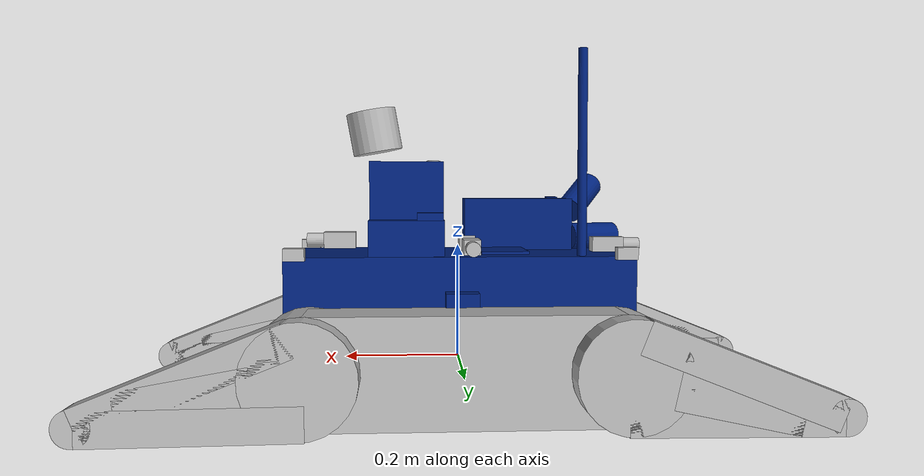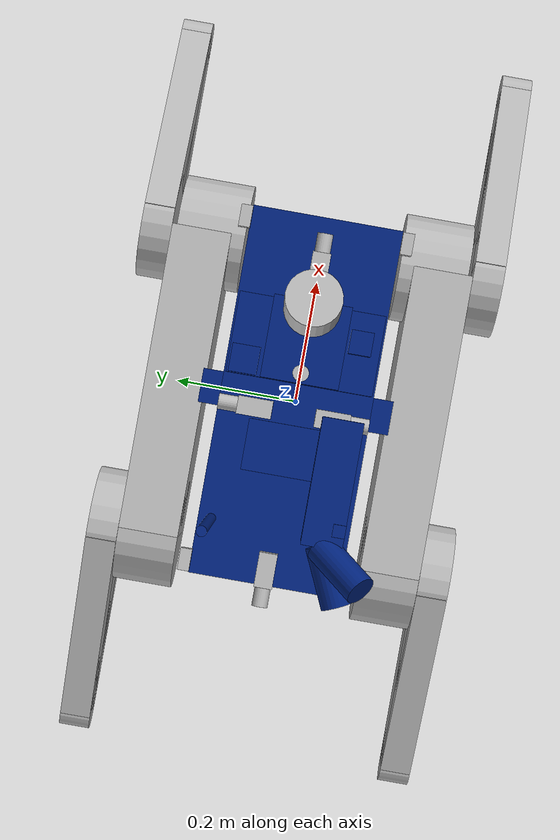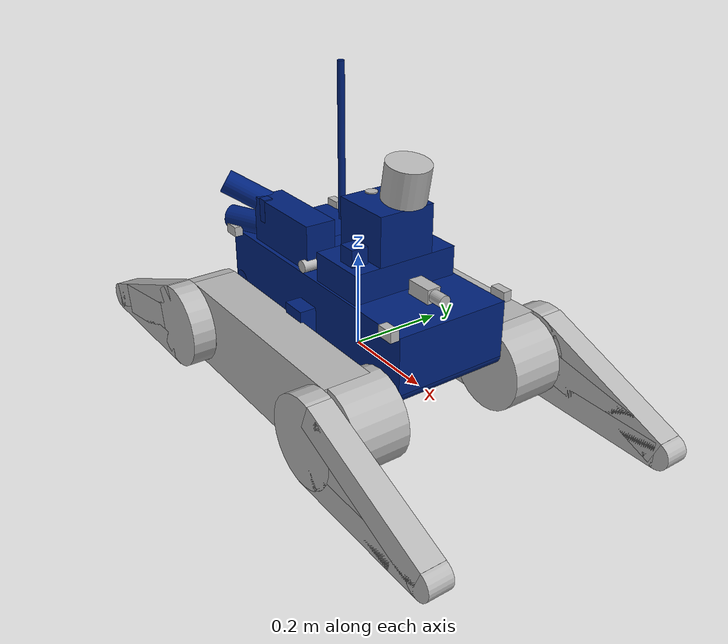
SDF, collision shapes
<?xml version='1.0' encoding='utf-8'?>
<sdf version="1.6">
  <model name="ctu_cras_norlab_absolem_sensor_config_1">
    <link name="base_link">
      <inertial>
        <pose>-0.036788 0.003286 0.148827 0 -0 0</pose>
        <mass>20.5</mass>
        <inertia>
          <ixx>0.0559014</ixx>
          <ixy>0.0109142</ixy>
          <ixz>-0.0212971</ixz>
          <iyy>0.0995733</iyy>
          <iyz>-0.00263589</iyz>
          <izz>0.0900705</izz>
        </inertia>
      </inertial>
      <collision name="base_link_collision">
        <pose>0 0 0.129 0 -0 0</pose>
        <geometry>
          <box>
            <size>0.59 0.24093 0.117</size>
          </box>
        </geometry>
      </collision>
      <collision name="base_link_collision_1">
        <pose>0 0.135 0.09 0 -0 0</pose>
        <geometry>
          <box>
            <size>0.055 0.04 0.08</size>
          </box>
        </geometry>
      </collision>
      <collision name="base_link_collision_2">
        <pose>0 0.155 0.013 0 -0 0</pose>
        <geometry>
          <box>
            <size>0.055 0.02 0.075</size>
          </box>
        </geometry>
      </collision>
      <collision name="base_link_collision_3">
        <pose>0 -0.135 0.09 0 -0 0</pose>
        <geometry>
          <box>
            <size>0.055 0.04 0.08</size>
          </box>
        </geometry>
      </collision>
      <collision name="base_link_collision_4">
        <pose>0 -0.155 0.013 0 -0 0</pose>
        <geometry>
          <box>
            <size>0.055 0.02 0.075</size>
          </box>
        </geometry>
      </collision>
      <collision name="base_link_collision_5">
        <pose>0 0 0.059 0 -0 0</pose>
        <geometry>
          <box>
            <size>0.546 0.24093 0.022</size>
          </box>
        </geometry>
      </collision>
      <collision name="base_link_collision_6">
        <pose>0.273 0 0.07 1.5707963267948966 -0 0</pose>
        <geometry>
          <cylinder>
            <length>0.24093</length>
            <radius>0.022022</radius>
          </cylinder>
        </geometry>
      </collision>
      <collision name="base_link_collision_7">
        <pose>-0.273 0 0.07 1.5707963267948966 -0 0</pose>
        <geometry>
          <cylinder>
            <length>0.24093</length>
            <radius>0.022022</radius>
          </cylinder>
        </geometry>
      </collision>
      <collision name="base_link_fixed_joint_lump__antenna_collision_8">
        <pose>-0.19364 0.1 0.1551 0 1.5707963267948966 0</pose>
        <geometry>
          <cylinder>
            <length>0.03718</length>
            <radius>0.008</radius>
          </cylinder>
        </geometry>
      </collision>
      <collision name="base_link_fixed_joint_lump__antenna_collision_9">
        <pose>-0.205 0.1 0.34563 0 -0 0</pose>
        <geometry>
          <cylinder>
            <length>0.38107</length>
            <radius>0.008</radius>
          </cylinder>
        </geometry>
      </collision>
      <collision name="base_link_fixed_joint_lump__battery_collision_10">
        <pose>-0.079 0 0.12 0 1.5707963267948966 0</pose>
        <geometry>
          <box>
            <size>0.145 0.135 0.082</size>
          </box>
        </geometry>
      </collision>
      <collision name="base_link_fixed_joint_lump__rear_sensor_item_collision_11">
        <pose>-0.185 -0.100465 0.235 0 -0 0</pose>
        <geometry>
          <box>
            <size>0.02 0.02 0.1</size>
          </box>
        </geometry>
      </collision>
      <collision name="base_link_fixed_joint_lump__mobilicom_collision_12">
        <pose>-0.114998 -0.077965 0.234837 1.5758 -0 3.1415926535897931</pose>
        <geometry>
          <box>
            <size>0.2 0.095 0.065</size>
          </box>
        </geometry>
      </collision>
      <collision name="base_link_fixed_joint_lump__mobilicom_antenna_l_collision_13">
        <pose>-0.241261 -0.112864 0.283984 1.06679 -0.002995 -0.641659</pose>
        <geometry>
          <cylinder>
            <length>0.1</length>
            <radius>0.025</radius>
          </cylinder>
        </geometry>
      </collision>
      <collision name="base_link_fixed_joint_lump__mobilicom_antenna_r_collision_14">
        <pose>-0.260464 -0.098887 0.209942 1.56871 -0.00455 -1.14166</pose>
        <geometry>
          <cylinder>
            <length>0.1</length>
            <radius>0.025</radius>
          </cylinder>
        </geometry>
      </collision>
      <collision name="base_link_fixed_joint_lump__top_box_collision_15">
        <pose>0.0915 0 0.2165 0 -0 0</pose>
        <geometry>
          <box>
            <size>0.127 0.231 0.06252</size>
          </box>
        </geometry>
      </collision>
      <collision name="base_link_fixed_joint_lump__top_box_collision_16">
        <pose>0.0515 0.09 0.254 0 -0 0</pose>
        <geometry>
          <box>
            <size>0.044 0.044 0.01303</size>
          </box>
        </geometry>
      </collision>
      <collision name="base_link_fixed_joint_lump__top_box_collision_17">
        <pose>0.10624 -0.08352 0.26496 0 -0 0</pose>
        <geometry>
          <box>
            <size>0.03732 0.03523 0.03489</size>
          </box>
        </geometry>
      </collision>
      <collision name="base_link_fixed_joint_lump__top_box_step_collision_18">
        <pose>0.0915 0 0.29752 0 -0 0</pose>
        <geometry>
          <box>
            <size>0.127 0.12 0.1</size>
          </box>
        </geometry>
      </collision>
      <visual name="base_link_visual">
        <geometry>
          <mesh>
            <uri>https://fuel.ignitionrobotics.org/1.0/OpenRobotics/models/CTU_CRAS_NORLAB_ABSOLEM_SENSOR_CONFIG_1/tip/files/meshes/body_2021.dae</uri>
          </mesh>
        </geometry>
      </visual>
      <visual name="base_link_fixed_joint_lump__antenna_visual_1">
        <pose>-0.175 0.1 0.1551 0 -0 0</pose>
        <geometry>
          <mesh>
            <uri>https://fuel.ignitionrobotics.org/1.0/OpenRobotics/models/CTU_CRAS_NORLAB_ABSOLEM_SENSOR_CONFIG_1/tip/files/meshes/antenna.dae</uri>
          </mesh>
        </geometry>
      </visual>
      <visual name="base_link_fixed_joint_lump__battery_visual_2">
        <pose>-0.12 0 0.12 0 1.5707963267948966 0</pose>
        <geometry>
          <mesh>
            <uri>https://fuel.ignitionrobotics.org/1.0/OpenRobotics/models/CTU_CRAS_NORLAB_ABSOLEM_SENSOR_CONFIG_1/tip/files/meshes/battery.dae</uri>
          </mesh>
        </geometry>
      </visual>
      <visual name="base_link_fixed_joint_lump__rear_sensor_item_visual_3">
        <pose>-0.185 -0.100465 0.235 0 -0 0</pose>
        <geometry>
          <box>
            <size>0.02 0.02 0.1</size>
          </box>
        </geometry>
      </visual>
      <visual name="base_link_fixed_joint_lump__mobilicom_visual_4">
        <pose>-0.164999 -0.090462 0.2349 1.5758 -0 3.1415926535897931</pose>
        <geometry>
          <mesh>
            <uri>https://fuel.ignitionrobotics.org/1.0/OpenRobotics/models/CTU_CRAS_NORLAB_ABSOLEM_SENSOR_CONFIG_1/tip/files/meshes/mobilicom.dae</uri>
          </mesh>
        </geometry>
      </visual>
      <visual name="base_link_fixed_joint_lump__mobilicom_antenna_l_visual_5">
        <pose>-0.241261 -0.112864 0.283984 1.06679 -0.002995 -0.641659</pose>
        <geometry>
          <cylinder>
            <length>0.1</length>
            <radius>0.005</radius>
          </cylinder>
        </geometry>
      </visual>
      <visual name="base_link_fixed_joint_lump__mobilicom_antenna_r_visual_6">
        <pose>-0.260464 -0.098887 0.209942 1.56871 -0.00455 -1.14166</pose>
        <geometry>
          <cylinder>
            <length>0.1</length>
            <radius>0.005</radius>
          </cylinder>
        </geometry>
      </visual>
      <visual name="base_link_fixed_joint_lump__top_box_visual_7">
        <pose>0.0915 0 0.185 0 -0 0</pose>
        <geometry>
          <mesh>
            <uri>https://fuel.ignitionrobotics.org/1.0/OpenRobotics/models/CTU_CRAS_NORLAB_ABSOLEM_SENSOR_CONFIG_1/tip/files/meshes/top_box_2021_ladybug.dae</uri>
          </mesh>
        </geometry>
      </visual>
      <visual name="base_link_fixed_joint_lump__top_box_visual_8">
        <pose>0.0165 0 0.305 -0 -1.5707963267948966 0</pose>
        <geometry>
          <mesh>
            <uri>https://fuel.ignitionrobotics.org/1.0/OpenRobotics/models/CTU_CRAS_NORLAB_ABSOLEM_SENSOR_CONFIG_1/tip/files/meshes/reflector.dae</uri>
          </mesh>
        </geometry>
      </visual>
      <visual name="base_link_fixed_joint_lump__top_box_step_visual_9">
        <pose>0.0915 0 0.29752 0 -0 0</pose>
        <geometry>
          <box>
            <size>0.127 0.12 0.1</size>
          </box>
        </geometry>
        <material>
          <ambient>0 0 0 0</ambient>
          <diffuse>0 0.133333 0.486275 1</diffuse>
          <specular>0 0 0 0</specular>
          <emissive>0 0 0 0</emissive>
        </material>
      </visual>
      <visual name="base_link_fixed_joint_lump__top_box_step_visual_10">
        <pose>0.1315 0 0.35252 0 0.18 0</pose>
        <geometry>
          <cylinder>
            <length>0.05</length>
            <radius>0.025</radius>
          </cylinder>
        </geometry>
        <material>
          <ambient>0 0 0 0</ambient>
          <diffuse>0 0.133333 0.486275 1</diffuse>
          <specular>0 0 0 0</specular>
          <emissive>0 0 0 0</emissive>
        </material>
      </visual>
      <light name="light_left" type="spot">
        <pose>0 0.13 0.2 1.5707963267948966 1.5707963267948966 0</pose>
        <attenuation>
          <range>50</range>
          <linear>0</linear>
          <constant>0.1</constant>
          <quadratic>0.0025</quadratic>
        </attenuation>
        <diffuse>0.8 0.8 0.5 1</diffuse>
        <specular>0.8 0.8 0.5 1</specular>
        <spot>
          <inner_angle>2.8</inner_angle>
          <outer_angle>2.9</outer_angle>
          <falloff>1</falloff>
        </spot>
        <direction>1 0 0</direction>
      </light>
      <light name="light_right" type="spot">
        <pose>0 -0.13 0.2 -1.5707963267948966 1.5707963267948966 0</pose>
        <attenuation>
          <range>50</range>
          <linear>0</linear>
          <constant>0.1</constant>
          <quadratic>0.0025</quadratic>
        </attenuation>
        <diffuse>0.8 0.8 0.5 1</diffuse>
        <specular>0.8 0.8 0.5 1</specular>
        <spot>
          <inner_angle>2.8</inner_angle>
          <outer_angle>2.9</outer_angle>
          <falloff>1</falloff>
        </spot>
        <direction>1 0 0</direction>
      </light>
      <light name="light_rear" type="spot">
        <pose>-0.4 0 0.2 0 1.5707963267948966 0</pose>
        <attenuation>
          <range>30</range>
          <linear>0</linear>
          <constant>0.2</constant>
          <quadratic>0.0025</quadratic>
        </attenuation>
        <diffuse>0.8 0.8 0.5 1</diffuse>
        <specular>0.8 0.8 0.5 1</specular>
        <spot>
          <inner_angle>1.5</inner_angle>
          <outer_angle>1.8</outer_angle>
          <falloff>1</falloff>
        </spot>
        <direction>1 0 0</direction>
      </light>
      <light name="light_front" type="spot">
        <pose>0.4 0 0.2 3.1415926535897931 1.5707963267948966 0</pose>
        <attenuation>
          <range>30</range>
          <linear>0</linear>
          <constant>0.2</constant>
          <quadratic>0.0025</quadratic>
        </attenuation>
        <diffuse>0.8 0.8 0.5 1</diffuse>
        <specular>0.8 0.8 0.5 1</specular>
        <spot>
          <inner_angle>1.5</inner_angle>
          <outer_angle>1.8</outer_angle>
          <falloff>1</falloff>
        </spot>
        <direction>1 0 0</direction>
      </light>
      <self_collide>0</self_collide>
      <sensor name="imu" type="imu">
        <always_on>1</always_on>
        <update_rate>50</update_rate>
        <imu>
          <angular_velocity>
            <x>
              <noise type="gaussian">
                <mean>0</mean>
                <stddev>0.009</stddev>
                <bias_mean>0.00075</bias_mean>
                <bias_stddev>0.005</bias_stddev>
                <dynamic_bias_stddev>2e-05</dynamic_bias_stddev>
                <dynamic_bias_correlation_time>400</dynamic_bias_correlation_time>
                <precision>0.00025</precision>
              </noise>
            </x>
            <y>
              <noise type="gaussian">
                <mean>0</mean>
                <stddev>0.009</stddev>
                <bias_mean>0.00075</bias_mean>
                <bias_stddev>0.005</bias_stddev>
                <dynamic_bias_stddev>2e-05</dynamic_bias_stddev>
                <dynamic_bias_correlation_time>400</dynamic_bias_correlation_time>
                <precision>0.00025</precision>
              </noise>
            </y>
            <z>
              <noise type="gaussian">
                <mean>0</mean>
                <stddev>0.009</stddev>
                <bias_mean>0.00075</bias_mean>
                <bias_stddev>0.005</bias_stddev>
                <dynamic_bias_stddev>2e-05</dynamic_bias_stddev>
                <dynamic_bias_correlation_time>400</dynamic_bias_correlation_time>
                <precision>0.00025</precision>
              </noise>
            </z>
          </angular_velocity>
          <linear_acceleration>
            <x>
              <noise type="gaussian">
                <mean>0</mean>
                <stddev>0.021</stddev>
                <bias_mean>0.05</bias_mean>
                <bias_stddev>0.0075</bias_stddev>
                <dynamic_bias_stddev>0.000375</dynamic_bias_stddev>
                <dynamic_bias_correlation_time>175</dynamic_bias_correlation_time>
                <precision>0.005</precision>
              </noise>
            </x>
            <y>
              <noise type="gaussian">
                <mean>0</mean>
                <stddev>0.021</stddev>
                <bias_mean>0.05</bias_mean>
                <bias_stddev>0.0075</bias_stddev>
                <dynamic_bias_stddev>0.000375</dynamic_bias_stddev>
                <dynamic_bias_correlation_time>175</dynamic_bias_correlation_time>
                <precision>0.005</precision>
              </noise>
            </y>
            <z>
              <noise type="gaussian">
                <mean>0</mean>
                <stddev>0.021</stddev>
                <bias_mean>0.05</bias_mean>
                <bias_stddev>0.0075</bias_stddev>
                <dynamic_bias_stddev>0.000375</dynamic_bias_stddev>
                <dynamic_bias_correlation_time>175</dynamic_bias_correlation_time>
                <precision>0.005</precision>
              </noise>
            </z>
          </linear_acceleration>
          <enable_orientation>0</enable_orientation>
        </imu>
        <pose>0 0 0.15 -3.1415926535897931 -0 0</pose>
      </sensor>
      <light name="light_up" type="spot">
        <pose>-0.075 0 0.12 -3.1415926535897931 0 -3.1415926535897931</pose>
        <attenuation>
          <range>60</range>
          <linear>0</linear>
          <constant>0.1</constant>
          <quadratic>0.0025</quadratic>
        </attenuation>
        <diffuse>0.8 0.8 0.5 1</diffuse>
        <specular>0.8 0.8 0.5 1</specular>
        <spot>
          <inner_angle>1.0472</inner_angle>
          <outer_angle>1.5708</outer_angle>
          <falloff>1</falloff>
        </spot>
        <direction>0 0 -1</direction>
      </light>
    </link>
    <link name="left_track">
      <pose>0 0.1985 0 0 -0 0</pose>
      <inertial>
        <pose>0 0 0.0141 0 -0 0</pose>
        <mass>6.06</mass>
        <inertia>
          <ixx>0.002731</ixx>
          <ixy>0</ixy>
          <ixz>0</ixz>
          <iyy>0.032554</iyy>
          <iyz>1.5e-05</iyz>
          <izz>0.031391</izz>
        </inertia>
      </inertial>
      <collision name="left_track_collision">
        <pose>0 0 0.01855 1.5707963267948966 -0 1.5707963267948966</pose>
        <geometry>
          <box>
            <size>0.097 0.178 0.5</size>
          </box>
        </geometry>
        <surface>
          <friction>
            <ode>
              <mu>10</mu>
              <mu2>150</mu2>
              <fdir1>0 0 1</fdir1>
            </ode>
          </friction>
        </surface>
      </collision>
      <collision name="left_track_collision_1">
        <pose>0.25 -0.015 0.01855 1.5707963267948966 -0 0</pose>
        <geometry>
          <cylinder>
            <length>0.112</length>
            <radius>0.089</radius>
          </cylinder>
        </geometry>
        <surface>
          <friction>
            <ode>
              <mu>10</mu>
              <mu2>150</mu2>
              <fdir1>0 0 1</fdir1>
            </ode>
          </friction>
        </surface>
      </collision>
      <collision name="left_track_collision_2">
        <pose>-0.25 0 0.01855 1.5707963267948966 -0 0</pose>
        <geometry>
          <cylinder>
            <length>0.097</length>
            <radius>0.089</radius>
          </cylinder>
        </geometry>
        <surface>
          <friction>
            <ode>
              <mu>10</mu>
              <mu2>150</mu2>
              <fdir1>0 0 1</fdir1>
            </ode>
          </friction>
        </surface>
      </collision>
      <visual name="left_track_visual">
        <pose>0 0 -0.0705 1.5707963267948966 -0 1.5707963267948966</pose>
        <geometry>
          <mesh>
            <uri>https://fuel.ignitionrobotics.org/1.0/OpenRobotics/models/CTU_CRAS_NORLAB_ABSOLEM_SENSOR_CONFIG_1/tip/files/meshes/bogie.dae</uri>
          </mesh>
        </geometry>
      </visual>
    </link>
    <joint name="left_track_j" type="revolute">
      <child>left_track</child>
      <parent>base_link</parent>
      <axis>
        <xyz>0 1 0</xyz>
        <limit>
          <lower>0</lower>
          <upper>0</upper>
          <effort>0</effort>
          <velocity>4</velocity>
        </limit>
        <dynamics>
          <spring_reference>0</spring_reference>
          <spring_stiffness>0</spring_stiffness>
        </dynamics>
        <use_parent_model_frame>0</use_parent_model_frame>
      </axis>
      <physics>
        <ode>
          <limit>
            <cfm>0</cfm>
            <erp>0.2</erp>
          </limit>
        </ode>
      </physics>
      <physics>
        <ode>
          <implicit_spring_damper>1</implicit_spring_damper>
          <cfm>0</cfm>
          <erp>0.95</erp>
        </ode>
      </physics>
    </joint>
    <link name="front_left_flipper">
      <pose>0.25 0.272 0.0195 0 0.193732 0</pose>
      <inertial>
        <pose>0.08 0 0 0 -0 0</pose>
        <mass>0.75</mass>
        <inertia>
          <ixx>0.0017491</ixx>
          <ixy>2.8512e-07</ixy>
          <ixz>0.0018277</ixz>
          <iyy>0.012277</iyy>
          <iyz>-3.6288e-07</iyz>
          <izz>0.010941</izz>
        </inertia>
      </inertial>
      <collision name="front_left_flipper_collision_large_wheel_collision">
        <pose>0 0 0 1.5707963267948966 -0 0</pose>
        <geometry>
          <cylinder>
            <length>0.04981</length>
            <radius>0.089</radius>
          </cylinder>
        </geometry>
        <surface>
          <friction>
            <ode>
              <mu>10</mu>
              <mu2>150</mu2>
              <fdir1>0 0 1</fdir1>
            </ode>
          </friction>
        </surface>
      </collision>
      <collision name="front_left_flipper_collision_small_wheel_collision_1">
        <pose>0.33 0 0 1.5707963267948966 -0 0</pose>
        <geometry>
          <cylinder>
            <length>0.04981</length>
            <radius>0.029</radius>
          </cylinder>
        </geometry>
        <surface>
          <friction>
            <ode>
              <mu>10</mu>
              <mu2>150</mu2>
              <fdir1>0 0 1</fdir1>
            </ode>
          </friction>
        </surface>
      </collision>
      <collision name="front_left_flipper_collision_top_bar_collision_2">
        <pose>0.165 0 0.0325 0 0.184162 0</pose>
        <geometry>
          <box>
            <size>0.33 0.04981 0.055</size>
          </box>
        </geometry>
        <surface>
          <friction>
            <ode>
              <mu>10</mu>
              <mu2>150</mu2>
              <fdir1>0 0 1</fdir1>
            </ode>
          </friction>
        </surface>
      </collision>
      <collision name="front_left_flipper_collision_bottom_bar_collision_3">
        <pose>0.165 0 -0.0325 0 -0.184162 0</pose>
        <geometry>
          <box>
            <size>0.33 0.04981 0.055</size>
          </box>
        </geometry>
        <surface>
          <friction>
            <ode>
              <mu>10</mu>
              <mu2>150</mu2>
              <fdir1>0 0 1</fdir1>
            </ode>
          </friction>
        </surface>
      </collision>
      <collision name="front_left_flipper_collision_middle_bar_collision_4">
        <pose>0.166 0 0.004 0 -0.02 0</pose>
        <geometry>
          <box>
            <size>0.2 0.04981 0.07</size>
          </box>
        </geometry>
        <surface>
          <friction>
            <ode>
              <mu>10</mu>
              <mu2>150</mu2>
              <fdir1>0 0 1</fdir1>
            </ode>
          </friction>
        </surface>
      </collision>
      <visual name="front_left_flipper_visual">
        <pose>0 0 0 -2.95743 -0 1.5707963267948966</pose>
        <geometry>
          <mesh>
            <uri>https://fuel.ignitionrobotics.org/1.0/OpenRobotics/models/CTU_CRAS_NORLAB_ABSOLEM_SENSOR_CONFIG_1/tip/files/meshes/flipper.dae</uri>
          </mesh>
        </geometry>
      </visual>
    </link>
    <joint name="front_left_flipper_j" type="revolute">
      <child>front_left_flipper</child>
      <parent>left_track</parent>
      <axis>
        <xyz>0 1 0</xyz>
        <limit>
          <lower>-1e+16</lower>
          <upper>1e+16</upper>
          <effort>20</effort>
          <velocity>0.785398</velocity>
        </limit>
        <dynamics>
          <spring_reference>0</spring_reference>
          <spring_stiffness>0</spring_stiffness>
        </dynamics>
        <use_parent_model_frame>0</use_parent_model_frame>
      </axis>
      <physics>
        <ode>
          <implicit_spring_damper>1</implicit_spring_damper>
          <cfm_damping>1</cfm_damping>
          <limit>
            <cfm>0</cfm>
            <erp>0.2</erp>
          </limit>
        </ode>
      </physics>
    </joint>
    <link name="rear_left_flipper">
      <pose>-0.25 0.272 0.0195 3.1415926535897931 0.193732 3.1415926535897931</pose>
      <inertial>
        <pose>0.08 0 0 0 -0 0</pose>
        <mass>0.75</mass>
        <inertia>
          <ixx>0.0017491</ixx>
          <ixy>2.8512e-07</ixy>
          <ixz>0.0018277</ixz>
          <iyy>0.012277</iyy>
          <iyz>-3.6288e-07</iyz>
          <izz>0.010941</izz>
        </inertia>
      </inertial>
      <collision name="rear_left_flipper_collision_large_wheel_collision">
        <pose>0 0 0 1.5707963267948966 -0 0</pose>
        <geometry>
          <cylinder>
            <length>0.04981</length>
            <radius>0.089</radius>
          </cylinder>
        </geometry>
        <surface>
          <friction>
            <ode>
              <mu>10</mu>
              <mu2>150</mu2>
              <fdir1>0 0 1</fdir1>
            </ode>
          </friction>
        </surface>
      </collision>
      <collision name="rear_left_flipper_collision_small_wheel_collision_1">
        <pose>0.33 0 0 1.5707963267948966 -0 0</pose>
        <geometry>
          <cylinder>
            <length>0.04981</length>
            <radius>0.029</radius>
          </cylinder>
        </geometry>
        <surface>
          <friction>
            <ode>
              <mu>10</mu>
              <mu2>150</mu2>
              <fdir1>0 0 1</fdir1>
            </ode>
          </friction>
        </surface>
      </collision>
      <collision name="rear_left_flipper_collision_top_bar_collision_2">
        <pose>0.165 0 0.0325 0 0.184162 0</pose>
        <geometry>
          <box>
            <size>0.33 0.04981 0.055</size>
          </box>
        </geometry>
        <surface>
          <friction>
            <ode>
              <mu>10</mu>
              <mu2>150</mu2>
              <fdir1>0 0 1</fdir1>
            </ode>
          </friction>
        </surface>
      </collision>
      <collision name="rear_left_flipper_collision_bottom_bar_collision_3">
        <pose>0.165 0 -0.0325 0 -0.184162 0</pose>
        <geometry>
          <box>
            <size>0.33 0.04981 0.055</size>
          </box>
        </geometry>
        <surface>
          <friction>
            <ode>
              <mu>10</mu>
              <mu2>150</mu2>
              <fdir1>0 0 1</fdir1>
            </ode>
          </friction>
        </surface>
      </collision>
      <collision name="rear_left_flipper_collision_middle_bar_collision_4">
        <pose>0.166 0 0.004 0 -0.02 0</pose>
        <geometry>
          <box>
            <size>0.2 0.04981 0.07</size>
          </box>
        </geometry>
        <surface>
          <friction>
            <ode>
              <mu>10</mu>
              <mu2>150</mu2>
              <fdir1>0 0 1</fdir1>
            </ode>
          </friction>
        </surface>
      </collision>
      <visual name="rear_left_flipper_visual">
        <pose>0 0 0 -2.95743 -0 1.5707963267948966</pose>
        <geometry>
          <mesh>
            <uri>https://fuel.ignitionrobotics.org/1.0/OpenRobotics/models/CTU_CRAS_NORLAB_ABSOLEM_SENSOR_CONFIG_1/tip/files/meshes/flipper.dae</uri>
          </mesh>
        </geometry>
      </visual>
    </link>
    <joint name="rear_left_flipper_j" type="revolute">
      <child>rear_left_flipper</child>
      <parent>left_track</parent>
      <axis>
        <xyz>0 1 0</xyz>
        <limit>
          <lower>-1e+16</lower>
          <upper>1e+16</upper>
          <effort>20</effort>
          <velocity>0.785398</velocity>
        </limit>
        <dynamics>
          <spring_reference>0</spring_reference>
          <spring_stiffness>0</spring_stiffness>
        </dynamics>
        <use_parent_model_frame>0</use_parent_model_frame>
      </axis>
      <physics>
        <ode>
          <implicit_spring_damper>1</implicit_spring_damper>
          <cfm_damping>1</cfm_damping>
          <limit>
            <cfm>0</cfm>
            <erp>0.2</erp>
          </limit>
        </ode>
      </physics>
    </joint>
    <link name="camera_0">
      <pose>0.185 0 0.195 0 -0 0</pose>
      <inertial>
        <pose>0.039802 0 0.0145 0 -0 0</pose>
        <mass>0.232</mass>
        <inertia>
          <ixx>3.25187e-05</ixx>
          <ixy>0</ixy>
          <ixz>0</ixz>
          <iyy>0.000158598</iyy>
          <iyz>0</iyz>
          <izz>0.000158598</izz>
        </inertia>
      </inertial>
      <collision name="camera_0_collision_collision">
        <pose>0.02465 0 0.0145 0 -0 0</pose>
        <geometry>
          <box>
            <size>0.0555 0.029 0.029</size>
          </box>
        </geometry>
      </collision>
      <collision name="camera_0_lens_collision_collision_1">
        <pose>0.062834 0 0.0145 0 1.5707963267948966 0</pose>
        <geometry>
          <cylinder>
            <length>0.03974</length>
            <radius>0.0125</radius>
          </cylinder>
        </geometry>
      </collision>
      <visual name="camera_0_visual">
        <pose>0 0 0.0145 0 -0 0</pose>
        <geometry>
          <mesh>
            <uri>https://fuel.ignitionrobotics.org/1.0/OpenRobotics/models/CTU_CRAS_NORLAB_ABSOLEM_SENSOR_CONFIG_1/tip/files/meshes/basler_ace2_pro.dae</uri>
          </mesh>
        </geometry>
      </visual>
      <visual name="camera_0_visual_1">
        <pose>0.042964 0 0.0145 0 -0 0</pose>
        <geometry>
          <mesh>
            <uri>https://fuel.ignitionrobotics.org/1.0/OpenRobotics/models/CTU_CRAS_NORLAB_ABSOLEM_SENSOR_CONFIG_1/tip/files/meshes/evetar_lens.dae</uri>
          </mesh>
        </geometry>
      </visual>
      <visual name="camera_0_fixed_joint_lump__front_camera_holder_visual_2">
        <pose>0.02 0 -0.005 0 -0 0</pose>
        <geometry>
          <box>
            <size>0.04 0.025 0.01</size>
          </box>
        </geometry>
      </visual>
      <sensor name="camera_0" type="camera">
        <pose>0.072044 0 0.0145 0 -0 0</pose>
        <update_rate>9</update_rate>
        <visualize>0</visualize>
        <camera>
          <horizontal_fov>1.50971</horizontal_fov>
          <image>
            <width>1920</width>
            <height>1200</height>
            <format>R8G8B8</format>
          </image>
          <clip>
            <near>0.011726</near>
            <far>300</far>
          </clip>
          <noise>
            <type>gaussian</type>
            <mean>0</mean>
            <stddev>0.007</stddev>
          </noise>
          <lens>
            <intrinsics>
              <fx>1020.51</fx>
              <fy>1020.51</fy>
              <cx>959.5</cx>
              <cy>599.5</cy>
              <s>0</s>
            </intrinsics>
            <type>stereographic</type>
            <scale_to_hfov>1</scale_to_hfov>
          </lens>
        </camera>
      </sensor>
    </link>
    <joint name="camera_0_j" type="fixed">
      <child>camera_0</child>
      <parent>base_link</parent>
      <axis>
        <dynamics>
          <spring_reference>0</spring_reference>
          <spring_stiffness>0</spring_stiffness>
        </dynamics>
        <xyz>0 0 1</xyz>
        <use_parent_model_frame>0</use_parent_model_frame>
        <limit>
          <lower>-1e+16</lower>
          <upper>1e+16</upper>
        </limit>
      </axis>
      <physics>
        <ode>
          <limit>
            <cfm>0</cfm>
            <erp>0.2</erp>
          </limit>
        </ode>
      </physics>
    </joint>
    <link name="camera_1">
      <pose>-0.02 -0.037465 0.185 0 0 -1.5707963267948966</pose>
      <inertial>
        <pose>0.039802 0 0.0145 0 -0 0</pose>
        <mass>0.232</mass>
        <inertia>
          <ixx>3.25187e-05</ixx>
          <ixy>0</ixy>
          <ixz>0</ixz>
          <iyy>0.000158598</iyy>
          <iyz>0</iyz>
          <izz>0.000158598</izz>
        </inertia>
      </inertial>
      <collision name="camera_1_collision_collision">
        <pose>0.02465 0 0.0145 0 -0 0</pose>
        <geometry>
          <box>
            <size>0.0555 0.029 0.029</size>
          </box>
        </geometry>
      </collision>
      <collision name="camera_1_lens_collision_collision_1">
        <pose>0.062834 0 0.0145 0 1.5707963267948966 0</pose>
        <geometry>
          <cylinder>
            <length>0.03974</length>
            <radius>0.0125</radius>
          </cylinder>
        </geometry>
      </collision>
      <visual name="camera_1_visual">
        <pose>0 0 0.0145 0 -0 0</pose>
        <geometry>
          <mesh>
            <uri>https://fuel.ignitionrobotics.org/1.0/OpenRobotics/models/CTU_CRAS_NORLAB_ABSOLEM_SENSOR_CONFIG_1/tip/files/meshes/basler_ace2_pro.dae</uri>
          </mesh>
        </geometry>
      </visual>
      <visual name="camera_1_visual_1">
        <pose>0.042964 0 0.0145 0 -0 0</pose>
        <geometry>
          <mesh>
            <uri>https://fuel.ignitionrobotics.org/1.0/OpenRobotics/models/CTU_CRAS_NORLAB_ABSOLEM_SENSOR_CONFIG_1/tip/files/meshes/evetar_lens.dae</uri>
          </mesh>
        </geometry>
      </visual>
      <sensor name="camera_1" type="camera">
        <pose>0.072044 0 0.0145 0 -0 0</pose>
        <update_rate>9</update_rate>
        <visualize>0</visualize>
        <camera>
          <horizontal_fov>1.50971</horizontal_fov>
          <image>
            <width>1920</width>
            <height>1200</height>
            <format>R8G8B8</format>
          </image>
          <clip>
            <near>0.011726</near>
            <far>300</far>
          </clip>
          <noise>
            <type>gaussian</type>
            <mean>0</mean>
            <stddev>0.007</stddev>
          </noise>
          <lens>
            <intrinsics>
              <fx>1020.51</fx>
              <fy>1020.51</fy>
              <cx>959.5</cx>
              <cy>599.5</cy>
              <s>0</s>
            </intrinsics>
            <type>stereographic</type>
            <scale_to_hfov>1</scale_to_hfov>
          </lens>
        </camera>
      </sensor>
    </link>
    <joint name="camera_1_j" type="fixed">
      <child>camera_1</child>
      <parent>base_link</parent>
      <axis>
        <dynamics>
          <spring_reference>0</spring_reference>
          <spring_stiffness>0</spring_stiffness>
        </dynamics>
        <xyz>0 0 1</xyz>
        <use_parent_model_frame>0</use_parent_model_frame>
        <limit>
          <lower>-1e+16</lower>
          <upper>1e+16</upper>
        </limit>
      </axis>
      <physics>
        <ode>
          <limit>
            <cfm>0</cfm>
            <erp>0.2</erp>
          </limit>
        </ode>
      </physics>
    </joint>
    <link name="camera_2">
      <pose>-0.245 0 0.185 0 -0 3.1415926535897931</pose>
      <inertial>
        <pose>0.039802 0 0.0145 0 -0 0</pose>
        <mass>0.232</mass>
        <inertia>
          <ixx>3.25187e-05</ixx>
          <ixy>0</ixy>
          <ixz>0</ixz>
          <iyy>0.000158598</iyy>
          <iyz>0</iyz>
          <izz>0.000158598</izz>
        </inertia>
      </inertial>
      <collision name="camera_2_collision_collision">
        <pose>0.02465 0 0.0145 0 -0 0</pose>
        <geometry>
          <box>
            <size>0.0555 0.029 0.029</size>
          </box>
        </geometry>
      </collision>
      <collision name="camera_2_lens_collision_collision_1">
        <pose>0.062834 0 0.0145 0 1.5707963267948966 0</pose>
        <geometry>
          <cylinder>
            <length>0.03974</length>
            <radius>0.0125</radius>
          </cylinder>
        </geometry>
      </collision>
      <visual name="camera_2_visual">
        <pose>0 0 0.0145 0 -0 0</pose>
        <geometry>
          <mesh>
            <uri>https://fuel.ignitionrobotics.org/1.0/OpenRobotics/models/CTU_CRAS_NORLAB_ABSOLEM_SENSOR_CONFIG_1/tip/files/meshes/basler_ace2_pro.dae</uri>
          </mesh>
        </geometry>
      </visual>
      <visual name="camera_2_visual_1">
        <pose>0.042964 0 0.0145 0 -0 0</pose>
        <geometry>
          <mesh>
            <uri>https://fuel.ignitionrobotics.org/1.0/OpenRobotics/models/CTU_CRAS_NORLAB_ABSOLEM_SENSOR_CONFIG_1/tip/files/meshes/evetar_lens.dae</uri>
          </mesh>
        </geometry>
      </visual>
      <sensor name="camera_2" type="camera">
        <pose>0.072044 0 0.0145 0 -0 0</pose>
        <update_rate>9</update_rate>
        <visualize>0</visualize>
        <camera>
          <horizontal_fov>1.50971</horizontal_fov>
          <image>
            <width>1920</width>
            <height>1200</height>
            <format>R8G8B8</format>
          </image>
          <clip>
            <near>0.011726</near>
            <far>300</far>
          </clip>
          <noise>
            <type>gaussian</type>
            <mean>0</mean>
            <stddev>0.007</stddev>
          </noise>
          <lens>
            <intrinsics>
              <fx>1020.51</fx>
              <fy>1020.51</fy>
              <cx>959.5</cx>
              <cy>599.5</cy>
              <s>0</s>
            </intrinsics>
            <type>stereographic</type>
            <scale_to_hfov>1</scale_to_hfov>
          </lens>
        </camera>
      </sensor>
    </link>
    <joint name="camera_2_j" type="fixed">
      <child>camera_2</child>
      <parent>base_link</parent>
      <axis>
        <dynamics>
          <spring_reference>0</spring_reference>
          <spring_stiffness>0</spring_stiffness>
        </dynamics>
        <xyz>0 0 1</xyz>
        <use_parent_model_frame>0</use_parent_model_frame>
        <limit>
          <lower>-1e+16</lower>
          <upper>1e+16</upper>
        </limit>
      </axis>
      <physics>
        <ode>
          <limit>
            <cfm>0</cfm>
            <erp>0.2</erp>
          </limit>
        </ode>
      </physics>
    </joint>
    <link name="camera_3">
      <pose>-0.02 0.037465 0.185 0 -0 1.5707963267948966</pose>
      <inertial>
        <pose>0.039802 0 0.0145 0 -0 0</pose>
        <mass>0.232</mass>
        <inertia>
          <ixx>3.25187e-05</ixx>
          <ixy>0</ixy>
          <ixz>0</ixz>
          <iyy>0.000158598</iyy>
          <iyz>0</iyz>
          <izz>0.000158598</izz>
        </inertia>
      </inertial>
      <collision name="camera_3_collision_collision">
        <pose>0.02465 0 0.0145 0 -0 0</pose>
        <geometry>
          <box>
            <size>0.0555 0.029 0.029</size>
          </box>
        </geometry>
      </collision>
      <collision name="camera_3_lens_collision_collision_1">
        <pose>0.062834 0 0.0145 0 1.5707963267948966 0</pose>
        <geometry>
          <cylinder>
            <length>0.03974</length>
            <radius>0.0125</radius>
          </cylinder>
        </geometry>
      </collision>
      <visual name="camera_3_visual">
        <pose>0 0 0.0145 0 -0 0</pose>
        <geometry>
          <mesh>
            <uri>https://fuel.ignitionrobotics.org/1.0/OpenRobotics/models/CTU_CRAS_NORLAB_ABSOLEM_SENSOR_CONFIG_1/tip/files/meshes/basler_ace2_pro.dae</uri>
          </mesh>
        </geometry>
      </visual>
      <visual name="camera_3_visual_1">
        <pose>0.042964 0 0.0145 0 -0 0</pose>
        <geometry>
          <mesh>
            <uri>https://fuel.ignitionrobotics.org/1.0/OpenRobotics/models/CTU_CRAS_NORLAB_ABSOLEM_SENSOR_CONFIG_1/tip/files/meshes/evetar_lens.dae</uri>
          </mesh>
        </geometry>
      </visual>
      <sensor name="camera_3" type="camera">
        <pose>0.072044 0 0.0145 0 -0 0</pose>
        <update_rate>9</update_rate>
        <visualize>0</visualize>
        <camera>
          <horizontal_fov>1.50971</horizontal_fov>
          <image>
            <width>1920</width>
            <height>1200</height>
            <format>R8G8B8</format>
          </image>
          <clip>
            <near>0.011726</near>
            <far>300</far>
          </clip>
          <noise>
            <type>gaussian</type>
            <mean>0</mean>
            <stddev>0.007</stddev>
          </noise>
          <lens>
            <intrinsics>
              <fx>1020.51</fx>
              <fy>1020.51</fy>
              <cx>959.5</cx>
              <cy>599.5</cy>
              <s>0</s>
            </intrinsics>
            <type>stereographic</type>
            <scale_to_hfov>1</scale_to_hfov>
          </lens>
        </camera>
      </sensor>
    </link>
    <joint name="camera_3_j" type="fixed">
      <child>camera_3</child>
      <parent>base_link</parent>
      <axis>
        <dynamics>
          <spring_reference>0</spring_reference>
          <spring_stiffness>0</spring_stiffness>
        </dynamics>
        <xyz>0 0 1</xyz>
        <use_parent_model_frame>0</use_parent_model_frame>
        <limit>
          <lower>-1e+16</lower>
          <upper>1e+16</upper>
        </limit>
      </axis>
      <physics>
        <ode>
          <limit>
            <cfm>0</cfm>
            <erp>0.2</erp>
          </limit>
        </ode>
      </physics>
    </joint>
    <link name="cliff_sensor_0">
      <pose>0.275 0.119535 0.2035 -1.5707963267948966 1.5707963267948966 0</pose>
      <inertial>
        <pose>0.0105 0 0.00925 0 -0 0</pose>
        <mass>0.012</mass>
        <inertia>
          <ixx>1.56725e-06</ixx>
          <ixy>0</ixy>
          <ixz>0</ixz>
          <iyy>7.8325e-07</iyy>
          <iyz>0</iyz>
          <izz>1.666e-06</izz>
        </inertia>
      </inertial>
      <collision name="cliff_sensor_0_collision">
        <pose>0.0105 0 0.00925 0 -0 0</pose>
        <geometry>
          <box>
            <size>0.021 0.035 0.0185</size>
          </box>
        </geometry>
      </collision>
      <visual name="cliff_sensor_0_visual">
        <geometry>
          <mesh>
            <uri>https://fuel.ignitionrobotics.org/1.0/OpenRobotics/models/CTU_CRAS_NORLAB_ABSOLEM_SENSOR_CONFIG_1/tip/files/meshes/tfmini_plus_lidar.dae</uri>
          </mesh>
        </geometry>
      </visual>
      <sensor name="laser" type="gpu_lidar">
        <pose>0.021 0 0.00925 0 -0 0</pose>
        <update_rate>10</update_rate>
        <visualize>0</visualize>
        <always_on>1</always_on>
        <lidar>
          <scan>
            <horizontal>
              <samples>3</samples>
              <resolution>1</resolution>
              <min_angle>-0.0314159</min_angle>
              <max_angle>0.0314159</max_angle>
            </horizontal>
            <vertical>
              <samples>3</samples>
              <resolution>1</resolution>
              <min_angle>-0.0314159</min_angle>
              <max_angle>0.0314159</max_angle>
            </vertical>
          </scan>
          <range>
            <min>0.1</min>
            <max>12</max>
            <resolution>0.01</resolution>
          </range>
          <noise>
            <type>gaussian</type>
            <mean>0</mean>
            <stddev>0.015</stddev>
          </noise>
        </lidar>
      </sensor>
    </link>
    <joint name="cliff_sensor_0_j" type="fixed">
      <child>cliff_sensor_0</child>
      <parent>base_link</parent>
      <axis>
        <dynamics>
          <spring_reference>0</spring_reference>
          <spring_stiffness>0</spring_stiffness>
        </dynamics>
        <xyz>0 0 1</xyz>
        <use_parent_model_frame>0</use_parent_model_frame>
        <limit>
          <lower>-1e+16</lower>
          <upper>1e+16</upper>
        </limit>
      </axis>
      <physics>
        <ode>
          <limit>
            <cfm>0</cfm>
            <erp>0.2</erp>
          </limit>
        </ode>
      </physics>
    </joint>
    <link name="cliff_sensor_1">
      <pose>0.275 -0.120465 0.2035 1.5707963267948966 1.5707963267948966 0</pose>
      <inertial>
        <pose>0.0105 0 0.00925 0 -0 0</pose>
        <mass>0.012</mass>
        <inertia>
          <ixx>1.56725e-06</ixx>
          <ixy>0</ixy>
          <ixz>0</ixz>
          <iyy>7.8325e-07</iyy>
          <iyz>0</iyz>
          <izz>1.666e-06</izz>
        </inertia>
      </inertial>
      <collision name="cliff_sensor_1_collision">
        <pose>0.0105 0 0.00925 0 -0 0</pose>
        <geometry>
          <box>
            <size>0.021 0.035 0.0185</size>
          </box>
        </geometry>
      </collision>
      <visual name="cliff_sensor_1_visual">
        <geometry>
          <mesh>
            <uri>https://fuel.ignitionrobotics.org/1.0/OpenRobotics/models/CTU_CRAS_NORLAB_ABSOLEM_SENSOR_CONFIG_1/tip/files/meshes/tfmini_plus_lidar.dae</uri>
          </mesh>
        </geometry>
      </visual>
      <sensor name="laser" type="gpu_lidar">
        <pose>0.021 0 0.00925 0 -0 0</pose>
        <update_rate>10</update_rate>
        <visualize>0</visualize>
        <always_on>1</always_on>
        <lidar>
          <scan>
            <horizontal>
              <samples>3</samples>
              <resolution>1</resolution>
              <min_angle>-0.0314159</min_angle>
              <max_angle>0.0314159</max_angle>
            </horizontal>
            <vertical>
              <samples>3</samples>
              <resolution>1</resolution>
              <min_angle>-0.0314159</min_angle>
              <max_angle>0.0314159</max_angle>
            </vertical>
          </scan>
          <range>
            <min>0.1</min>
            <max>12</max>
            <resolution>0.01</resolution>
          </range>
          <noise>
            <type>gaussian</type>
            <mean>0</mean>
            <stddev>0.015</stddev>
          </noise>
        </lidar>
      </sensor>
    </link>
    <joint name="cliff_sensor_1_j" type="fixed">
      <child>cliff_sensor_1</child>
      <parent>base_link</parent>
      <axis>
        <dynamics>
          <spring_reference>0</spring_reference>
          <spring_stiffness>0</spring_stiffness>
        </dynamics>
        <xyz>0 0 1</xyz>
        <use_parent_model_frame>0</use_parent_model_frame>
        <limit>
          <lower>-1e+16</lower>
          <upper>1e+16</upper>
        </limit>
      </axis>
      <physics>
        <ode>
          <limit>
            <cfm>0</cfm>
            <erp>0.2</erp>
          </limit>
        </ode>
      </physics>
    </joint>
    <link name="cliff_sensor_2">
      <pose>-0.275 0.119535 0.2035 -1.5707963267948966 1.5707963267948966 0</pose>
      <inertial>
        <pose>0.0105 0 0.00925 0 -0 0</pose>
        <mass>0.012</mass>
        <inertia>
          <ixx>1.56725e-06</ixx>
          <ixy>0</ixy>
          <ixz>0</ixz>
          <iyy>7.8325e-07</iyy>
          <iyz>0</iyz>
          <izz>1.666e-06</izz>
        </inertia>
      </inertial>
      <collision name="cliff_sensor_2_collision">
        <pose>0.0105 0 0.00925 0 -0 0</pose>
        <geometry>
          <box>
            <size>0.021 0.035 0.0185</size>
          </box>
        </geometry>
      </collision>
      <visual name="cliff_sensor_2_visual">
        <geometry>
          <mesh>
            <uri>https://fuel.ignitionrobotics.org/1.0/OpenRobotics/models/CTU_CRAS_NORLAB_ABSOLEM_SENSOR_CONFIG_1/tip/files/meshes/tfmini_plus_lidar.dae</uri>
          </mesh>
        </geometry>
      </visual>
      <sensor name="laser" type="gpu_lidar">
        <pose>0.021 0 0.00925 0 -0 0</pose>
        <update_rate>10</update_rate>
        <visualize>0</visualize>
        <always_on>1</always_on>
        <lidar>
          <scan>
            <horizontal>
              <samples>3</samples>
              <resolution>1</resolution>
              <min_angle>-0.0314159</min_angle>
              <max_angle>0.0314159</max_angle>
            </horizontal>
            <vertical>
              <samples>3</samples>
              <resolution>1</resolution>
              <min_angle>-0.0314159</min_angle>
              <max_angle>0.0314159</max_angle>
            </vertical>
          </scan>
          <range>
            <min>0.1</min>
            <max>12</max>
            <resolution>0.01</resolution>
          </range>
          <noise>
            <type>gaussian</type>
            <mean>0</mean>
            <stddev>0.015</stddev>
          </noise>
        </lidar>
      </sensor>
    </link>
    <joint name="cliff_sensor_2_j" type="fixed">
      <child>cliff_sensor_2</child>
      <parent>base_link</parent>
      <axis>
        <dynamics>
          <spring_reference>0</spring_reference>
          <spring_stiffness>0</spring_stiffness>
        </dynamics>
        <xyz>0 0 1</xyz>
        <use_parent_model_frame>0</use_parent_model_frame>
        <limit>
          <lower>-1e+16</lower>
          <upper>1e+16</upper>
        </limit>
      </axis>
      <physics>
        <ode>
          <limit>
            <cfm>0</cfm>
            <erp>0.2</erp>
          </limit>
        </ode>
      </physics>
    </joint>
    <link name="cliff_sensor_3">
      <pose>-0.275 -0.120465 0.2035 1.5707963267948966 1.5707963267948966 0</pose>
      <inertial>
        <pose>0.0105 0 0.00925 0 -0 0</pose>
        <mass>0.012</mass>
        <inertia>
          <ixx>1.56725e-06</ixx>
          <ixy>0</ixy>
          <ixz>0</ixz>
          <iyy>7.8325e-07</iyy>
          <iyz>0</iyz>
          <izz>1.666e-06</izz>
        </inertia>
      </inertial>
      <collision name="cliff_sensor_3_collision">
        <pose>0.0105 0 0.00925 0 -0 0</pose>
        <geometry>
          <box>
            <size>0.021 0.035 0.0185</size>
          </box>
        </geometry>
      </collision>
      <visual name="cliff_sensor_3_visual">
        <geometry>
          <mesh>
            <uri>https://fuel.ignitionrobotics.org/1.0/OpenRobotics/models/CTU_CRAS_NORLAB_ABSOLEM_SENSOR_CONFIG_1/tip/files/meshes/tfmini_plus_lidar.dae</uri>
          </mesh>
        </geometry>
      </visual>
      <sensor name="laser" type="gpu_lidar">
        <pose>0.021 0 0.00925 0 -0 0</pose>
        <update_rate>10</update_rate>
        <visualize>0</visualize>
        <always_on>1</always_on>
        <lidar>
          <scan>
            <horizontal>
              <samples>3</samples>
              <resolution>1</resolution>
              <min_angle>-0.0314159</min_angle>
              <max_angle>0.0314159</max_angle>
            </horizontal>
            <vertical>
              <samples>3</samples>
              <resolution>1</resolution>
              <min_angle>-0.0314159</min_angle>
              <max_angle>0.0314159</max_angle>
            </vertical>
          </scan>
          <range>
            <min>0.1</min>
            <max>12</max>
            <resolution>0.01</resolution>
          </range>
          <noise>
            <type>gaussian</type>
            <mean>0</mean>
            <stddev>0.015</stddev>
          </noise>
        </lidar>
      </sensor>
    </link>
    <joint name="cliff_sensor_3_j" type="fixed">
      <child>cliff_sensor_3</child>
      <parent>base_link</parent>
      <axis>
        <dynamics>
          <spring_reference>0</spring_reference>
          <spring_stiffness>0</spring_stiffness>
        </dynamics>
        <xyz>0 0 1</xyz>
        <use_parent_model_frame>0</use_parent_model_frame>
        <limit>
          <lower>-1e+16</lower>
          <upper>1e+16</upper>
        </limit>
      </axis>
      <physics>
        <ode>
          <limit>
            <cfm>0</cfm>
            <erp>0.2</erp>
          </limit>
        </ode>
      </physics>
    </joint>
    <link name="camera_4">
      <pose>0.0435 -0.0145 0.26752 -1.5707963267948966 -1.5707963267948966 0</pose>
      <inertial>
        <pose>0.039802 0 0.0145 0 -0 0</pose>
        <mass>0.232</mass>
        <inertia>
          <ixx>3.25187e-05</ixx>
          <ixy>0</ixy>
          <ixz>0</ixz>
          <iyy>0.000158598</iyy>
          <iyz>0</iyz>
          <izz>0.000158598</izz>
        </inertia>
      </inertial>
      <collision name="camera_4_collision_collision">
        <pose>0.02465 0 0.0145 0 -0 0</pose>
        <geometry>
          <box>
            <size>0.0555 0.029 0.029</size>
          </box>
        </geometry>
      </collision>
      <collision name="camera_4_lens_collision_collision_1">
        <pose>0.062834 0 0.0145 0 1.5707963267948966 0</pose>
        <geometry>
          <cylinder>
            <length>0.03974</length>
            <radius>0.0125</radius>
          </cylinder>
        </geometry>
      </collision>
      <visual name="camera_4_visual">
        <pose>0 0 0.0145 0 -0 0</pose>
        <geometry>
          <mesh>
            <uri>https://fuel.ignitionrobotics.org/1.0/OpenRobotics/models/CTU_CRAS_NORLAB_ABSOLEM_SENSOR_CONFIG_1/tip/files/meshes/basler_ace2_pro.dae</uri>
          </mesh>
        </geometry>
      </visual>
      <visual name="camera_4_visual_1">
        <pose>0.042964 0 0.0145 0 -0 0</pose>
        <geometry>
          <mesh>
            <uri>https://fuel.ignitionrobotics.org/1.0/OpenRobotics/models/CTU_CRAS_NORLAB_ABSOLEM_SENSOR_CONFIG_1/tip/files/meshes/evetar_lens.dae</uri>
          </mesh>
        </geometry>
      </visual>
      <sensor name="camera_4" type="camera">
        <pose>0.072044 0 0.0145 0 -0 0</pose>
        <update_rate>9</update_rate>
        <visualize>0</visualize>
        <camera>
          <horizontal_fov>1.50971</horizontal_fov>
          <image>
            <width>1920</width>
            <height>1200</height>
            <format>R8G8B8</format>
          </image>
          <clip>
            <near>0.011726</near>
            <far>300</far>
          </clip>
          <noise>
            <type>gaussian</type>
            <mean>0</mean>
            <stddev>0.007</stddev>
          </noise>
          <lens>
            <intrinsics>
              <fx>1020.51</fx>
              <fy>1020.51</fy>
              <cx>959.5</cx>
              <cy>599.5</cy>
              <s>0</s>
            </intrinsics>
            <type>stereographic</type>
            <scale_to_hfov>1</scale_to_hfov>
          </lens>
        </camera>
      </sensor>
    </link>
    <joint name="camera_4_j" type="fixed">
      <child>camera_4</child>
      <parent>base_link</parent>
      <axis>
        <dynamics>
          <spring_reference>0</spring_reference>
          <spring_stiffness>0</spring_stiffness>
        </dynamics>
        <xyz>0 0 1</xyz>
        <use_parent_model_frame>0</use_parent_model_frame>
        <limit>
          <lower>-1e+16</lower>
          <upper>1e+16</upper>
        </limit>
      </axis>
      <physics>
        <ode>
          <limit>
            <cfm>0</cfm>
            <erp>0.2</erp>
          </limit>
        </ode>
      </physics>
    </joint>
    <link name="laser">
      <pose>0.1415 0 0.365 0 0.18 0</pose>
      <inertial>
        <pose>0 0 0.03675 0 -0 0</pose>
        <mass>0.5</mass>
        <inertia>
          <ixx>0.000461625</ixx>
          <ixy>0</ixy>
          <ixz>0</ixz>
          <iyy>0.000461625</iyy>
          <iyz>0</iyz>
          <izz>0.000473063</izz>
        </inertia>
      </inertial>
      <collision name="laser_collision">
        <pose>0 0 0.03675 0 -0 0</pose>
        <geometry>
          <cylinder>
            <length>0.0735</length>
            <radius>0.0435</radius>
          </cylinder>
        </geometry>
      </collision>
      <visual name="laser_visual">
        <geometry>
          <mesh>
            <uri>https://fuel.ignitionrobotics.org/1.0/OpenRobotics/models/CTU_CRAS_NORLAB_ABSOLEM_SENSOR_CONFIG_1/tip/files/meshes/ouster-os0.dae</uri>
          </mesh>
        </geometry>
      </visual>
      <sensor name="laser" type="gpu_lidar">
        <pose>0 0 0.035925 0 -0 0</pose>
        <update_rate>10</update_rate>
        <visualize>0</visualize>
        <always_on>1</always_on>
        <lidar>
          <scan>
            <horizontal>
              <samples>2048</samples>
              <resolution>1</resolution>
              <min_angle>-3.1459</min_angle>
              <max_angle>3.1459</max_angle>
            </horizontal>
            <vertical>
              <samples>128</samples>
              <resolution>1</resolution>
              <min_angle>-0.785398</min_angle>
              <max_angle>0.785398</max_angle>
            </vertical>
          </scan>
          <range>
            <min>0.1</min>
            <max>50</max>
            <resolution>0.01</resolution>
          </range>
          <noise>
            <type>gaussian</type>
            <mean>0</mean>
            <stddev>0.01</stddev>
          </noise>
        </lidar>
      </sensor>
    </link>
    <joint name="laser_j" type="fixed">
      <child>laser</child>
      <parent>base_link</parent>
      <axis>
        <dynamics>
          <spring_reference>0</spring_reference>
          <spring_stiffness>0</spring_stiffness>
        </dynamics>
        <xyz>0 0 1</xyz>
        <use_parent_model_frame>0</use_parent_model_frame>
        <limit>
          <lower>-1e+16</lower>
          <upper>1e+16</upper>
        </limit>
      </axis>
      <physics>
        <ode>
          <limit>
            <cfm>0</cfm>
            <erp>0.2</erp>
          </limit>
        </ode>
      </physics>
    </joint>
    <link name="right_track">
      <pose>0 -0.1985 0 0 -0 0</pose>
      <inertial>
        <pose>0 0 0.0141 0 -0 0</pose>
        <mass>6.06</mass>
        <inertia>
          <ixx>0.002731</ixx>
          <ixy>0</ixy>
          <ixz>0</ixz>
          <iyy>0.032554</iyy>
          <iyz>1.5e-05</iyz>
          <izz>0.031391</izz>
        </inertia>
      </inertial>
      <collision name="right_track_collision">
        <pose>0 0 0.01855 1.5707963267948966 -0 1.5707963267948966</pose>
        <geometry>
          <box>
            <size>0.097 0.178 0.5</size>
          </box>
        </geometry>
        <surface>
          <friction>
            <ode>
              <mu>10</mu>
              <mu2>150</mu2>
              <fdir1>0 0 1</fdir1>
            </ode>
          </friction>
        </surface>
      </collision>
      <collision name="right_track_collision_1">
        <pose>0.25 0.015 0.01855 1.5707963267948966 -0 0</pose>
        <geometry>
          <cylinder>
            <length>0.112</length>
            <radius>0.089</radius>
          </cylinder>
        </geometry>
        <surface>
          <friction>
            <ode>
              <mu>10</mu>
              <mu2>150</mu2>
              <fdir1>0 0 1</fdir1>
            </ode>
          </friction>
        </surface>
      </collision>
      <collision name="right_track_collision_2">
        <pose>-0.25 0 0.01855 1.5707963267948966 -0 0</pose>
        <geometry>
          <cylinder>
            <length>0.097</length>
            <radius>0.089</radius>
          </cylinder>
        </geometry>
        <surface>
          <friction>
            <ode>
              <mu>10</mu>
              <mu2>150</mu2>
              <fdir1>0 0 1</fdir1>
            </ode>
          </friction>
        </surface>
      </collision>
      <visual name="right_track_visual">
        <pose>0 0 -0.0705 1.5707963267948966 0 -1.5707963267948966</pose>
        <geometry>
          <mesh>
            <uri>https://fuel.ignitionrobotics.org/1.0/OpenRobotics/models/CTU_CRAS_NORLAB_ABSOLEM_SENSOR_CONFIG_1/tip/files/meshes/bogie.dae</uri>
          </mesh>
        </geometry>
      </visual>
    </link>
    <joint name="right_track_j" type="revolute">
      <child>right_track</child>
      <parent>base_link</parent>
      <axis>
        <xyz>0 1 0</xyz>
        <limit>
          <lower>0</lower>
          <upper>0</upper>
          <effort>0</effort>
          <velocity>4</velocity>
        </limit>
        <dynamics>
          <spring_reference>0</spring_reference>
          <spring_stiffness>0</spring_stiffness>
        </dynamics>
        <use_parent_model_frame>0</use_parent_model_frame>
      </axis>
      <physics>
        <ode>
          <limit>
            <cfm>0</cfm>
            <erp>0.2</erp>
          </limit>
        </ode>
      </physics>
      <physics>
        <ode>
          <implicit_spring_damper>1</implicit_spring_damper>
          <cfm>0</cfm>
          <erp>0.95</erp>
        </ode>
      </physics>
    </joint>
    <link name="front_right_flipper">
      <pose>0.25 -0.272 0.0195 3.1415926535897931 -0.193732 3.1415926535897931</pose>
      <inertial>
        <pose>-0.08 0 0 0 -0 0</pose>
        <mass>0.75</mass>
        <inertia>
          <ixx>0.0017491</ixx>
          <ixy>2.8512e-07</ixy>
          <ixz>0.0018277</ixz>
          <iyy>0.012277</iyy>
          <iyz>-3.6288e-07</iyz>
          <izz>0.010941</izz>
        </inertia>
      </inertial>
      <collision name="front_right_flipper_collision_large_wheel_collision">
        <pose>0 0 0 1.5707963267948966 -0 0</pose>
        <geometry>
          <cylinder>
            <length>0.04981</length>
            <radius>0.089</radius>
          </cylinder>
        </geometry>
        <surface>
          <friction>
            <ode>
              <mu>10</mu>
              <mu2>150</mu2>
              <fdir1>0 0 1</fdir1>
            </ode>
          </friction>
        </surface>
      </collision>
      <collision name="front_right_flipper_collision_small_wheel_collision_1">
        <pose>-0.33 0 0 1.5707963267948966 -0 0</pose>
        <geometry>
          <cylinder>
            <length>0.04981</length>
            <radius>0.029</radius>
          </cylinder>
        </geometry>
        <surface>
          <friction>
            <ode>
              <mu>10</mu>
              <mu2>150</mu2>
              <fdir1>0 0 1</fdir1>
            </ode>
          </friction>
        </surface>
      </collision>
      <collision name="front_right_flipper_collision_top_bar_collision_2">
        <pose>-0.165 0 0.0325 0 0.184162 -3.1415926535897931</pose>
        <geometry>
          <box>
            <size>0.33 0.04981 0.055</size>
          </box>
        </geometry>
        <surface>
          <friction>
            <ode>
              <mu>10</mu>
              <mu2>150</mu2>
              <fdir1>0 0 1</fdir1>
            </ode>
          </friction>
        </surface>
      </collision>
      <collision name="front_right_flipper_collision_bottom_bar_collision_3">
        <pose>-0.165 0 -0.0325 0 -0.184162 -3.1415926535897931</pose>
        <geometry>
          <box>
            <size>0.33 0.04981 0.055</size>
          </box>
        </geometry>
        <surface>
          <friction>
            <ode>
              <mu>10</mu>
              <mu2>150</mu2>
              <fdir1>0 0 1</fdir1>
            </ode>
          </friction>
        </surface>
      </collision>
      <collision name="front_right_flipper_collision_middle_bar_collision_4">
        <pose>-0.166 0 0.004 0 -0.02 -3.1415926535897931</pose>
        <geometry>
          <box>
            <size>0.2 0.04981 0.07</size>
          </box>
        </geometry>
        <surface>
          <friction>
            <ode>
              <mu>10</mu>
              <mu2>150</mu2>
              <fdir1>0 0 1</fdir1>
            </ode>
          </friction>
        </surface>
      </collision>
      <visual name="front_right_flipper_visual">
        <pose>0 0 0 -2.95743 -0 -1.5707963267948966</pose>
        <geometry>
          <mesh>
            <uri>https://fuel.ignitionrobotics.org/1.0/OpenRobotics/models/CTU_CRAS_NORLAB_ABSOLEM_SENSOR_CONFIG_1/tip/files/meshes/flipper.dae</uri>
          </mesh>
        </geometry>
      </visual>
    </link>
    <joint name="front_right_flipper_j" type="revolute">
      <child>front_right_flipper</child>
      <parent>right_track</parent>
      <axis>
        <xyz>0 1 0</xyz>
        <limit>
          <lower>-1e+16</lower>
          <upper>1e+16</upper>
          <effort>20</effort>
          <velocity>0.785398</velocity>
        </limit>
        <dynamics>
          <spring_reference>0</spring_reference>
          <spring_stiffness>0</spring_stiffness>
        </dynamics>
        <use_parent_model_frame>0</use_parent_model_frame>
      </axis>
      <physics>
        <ode>
          <implicit_spring_damper>1</implicit_spring_damper>
          <cfm_damping>1</cfm_damping>
          <limit>
            <cfm>0</cfm>
            <erp>0.2</erp>
          </limit>
        </ode>
      </physics>
    </joint>
    <link name="rear_right_flipper">
      <pose>-0.25 -0.272 0.0195 0 -0.193732 0</pose>
      <inertial>
        <pose>-0.08 0 0 0 -0 0</pose>
        <mass>0.75</mass>
        <inertia>
          <ixx>0.0017491</ixx>
          <ixy>2.8512e-07</ixy>
          <ixz>0.0018277</ixz>
          <iyy>0.012277</iyy>
          <iyz>-3.6288e-07</iyz>
          <izz>0.010941</izz>
        </inertia>
      </inertial>
      <collision name="rear_right_flipper_collision_large_wheel_collision">
        <pose>0 0 0 1.5707963267948966 -0 0</pose>
        <geometry>
          <cylinder>
            <length>0.04981</length>
            <radius>0.089</radius>
          </cylinder>
        </geometry>
        <surface>
          <friction>
            <ode>
              <mu>10</mu>
              <mu2>150</mu2>
              <fdir1>0 0 1</fdir1>
            </ode>
          </friction>
        </surface>
      </collision>
      <collision name="rear_right_flipper_collision_small_wheel_collision_1">
        <pose>-0.33 0 0 1.5707963267948966 -0 0</pose>
        <geometry>
          <cylinder>
            <length>0.04981</length>
            <radius>0.029</radius>
          </cylinder>
        </geometry>
        <surface>
          <friction>
            <ode>
              <mu>10</mu>
              <mu2>150</mu2>
              <fdir1>0 0 1</fdir1>
            </ode>
          </friction>
        </surface>
      </collision>
      <collision name="rear_right_flipper_collision_top_bar_collision_2">
        <pose>-0.165 0 0.0325 0 0.184162 -3.1415926535897931</pose>
        <geometry>
          <box>
            <size>0.33 0.04981 0.055</size>
          </box>
        </geometry>
        <surface>
          <friction>
            <ode>
              <mu>10</mu>
              <mu2>150</mu2>
              <fdir1>0 0 1</fdir1>
            </ode>
          </friction>
        </surface>
      </collision>
      <collision name="rear_right_flipper_collision_bottom_bar_collision_3">
        <pose>-0.165 0 -0.0325 0 -0.184162 -3.1415926535897931</pose>
        <geometry>
          <box>
            <size>0.33 0.04981 0.055</size>
          </box>
        </geometry>
        <surface>
          <friction>
            <ode>
              <mu>10</mu>
              <mu2>150</mu2>
              <fdir1>0 0 1</fdir1>
            </ode>
          </friction>
        </surface>
      </collision>
      <collision name="rear_right_flipper_collision_middle_bar_collision_4">
        <pose>-0.166 0 0.004 0 -0.02 -3.1415926535897931</pose>
        <geometry>
          <box>
            <size>0.2 0.04981 0.07</size>
          </box>
        </geometry>
        <surface>
          <friction>
            <ode>
              <mu>10</mu>
              <mu2>150</mu2>
              <fdir1>0 0 1</fdir1>
            </ode>
          </friction>
        </surface>
      </collision>
      <visual name="rear_right_flipper_visual">
        <pose>0 0 0 -2.95743 -0 -1.5707963267948966</pose>
        <geometry>
          <mesh>
            <uri>https://fuel.ignitionrobotics.org/1.0/OpenRobotics/models/CTU_CRAS_NORLAB_ABSOLEM_SENSOR_CONFIG_1/tip/files/meshes/flipper.dae</uri>
          </mesh>
        </geometry>
      </visual>
    </link>
    <joint name="rear_right_flipper_j" type="revolute">
      <child>rear_right_flipper</child>
      <parent>right_track</parent>
      <axis>
        <xyz>0 1 0</xyz>
        <limit>
          <lower>-1e+16</lower>
          <upper>1e+16</upper>
          <effort>20</effort>
          <velocity>0.785398</velocity>
        </limit>
        <dynamics>
          <spring_reference>0</spring_reference>
          <spring_stiffness>0</spring_stiffness>
        </dynamics>
        <use_parent_model_frame>0</use_parent_model_frame>
      </axis>
      <physics>
        <ode>
          <implicit_spring_damper>1</implicit_spring_damper>
          <cfm_damping>1</cfm_damping>
          <limit>
            <cfm>0</cfm>
            <erp>0.2</erp>
          </limit>
        </ode>
      </physics>
    </joint>
    <plugin name="cras::FlipperControlPlugin" filename="libflipper_control_plugin.so">
      <joint_name>front_left_flipper_j</joint_name>
      <max_velocity>0.8</max_velocity>
    </plugin>
    <plugin name="cras::FlipperControlPlugin" filename="libflipper_control_plugin.so">
      <joint_name>front_right_flipper_j</joint_name>
      <max_velocity>0.8</max_velocity>
    </plugin>
    <plugin name="cras::FlipperControlPlugin" filename="libflipper_control_plugin.so">
      <joint_name>rear_left_flipper_j</joint_name>
      <max_velocity>0.8</max_velocity>
    </plugin>
    <plugin name="cras::FlipperControlPlugin" filename="libflipper_control_plugin.so">
      <joint_name>rear_right_flipper_j</joint_name>
      <max_velocity>0.8</max_velocity>
    </plugin>
    <plugin name="ignition::gazebo::systems::JointStatePublisher" filename="libignition-gazebo-joint-state-publisher-system.so">
      <joint_name>front_left_flipper_j</joint_name>
      <joint_name>front_right_flipper_j</joint_name>
      <joint_name>rear_left_flipper_j</joint_name>
      <joint_name>rear_right_flipper_j</joint_name>
    </plugin>
  </model>
</sdf>
